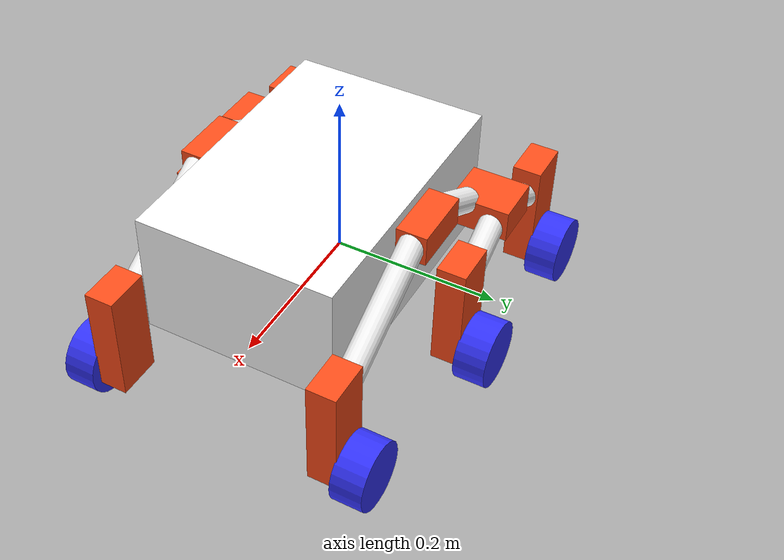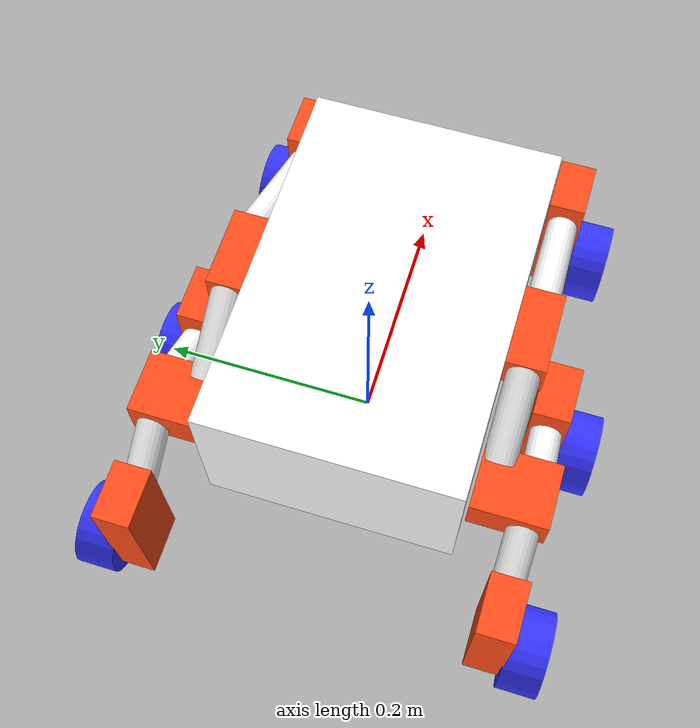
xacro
<?xml version="1.0"?>
<robot xmlns:xacro="http://www.ros.org/wiki/xacro" >

    <xacro:include filename="inertial_macros.xacro"/>

    <material name="white">
        <color rgba="1 1 1 1" />
    </material>

    <material name="orange">
        <color rgba="1 0.3 0.1 1"/>
    </material>

    <material name="blue">
        <color rgba="0.2 0.2 1 1"/>
    </material>

    <material name="black">
        <color rgba="0 0 0 1"/>
    </material>

    <!-- BASE LINK -->

    <link name="base_link">
    </link>

    <!-- BASE_FOOTPRINT LINK -->

    <joint name="base_footprint_joint" type="fixed">
        <parent link="base_link"/>
        <child link="base_footprint"/>
        <origin xyz="0 0 0" rpy="0 0 0"/>
    </joint>

    <link name="base_footprint">
    </link>

    <!-- CHASSIS LINK -->

    <joint name="chassis_joint" type="fixed">
        <parent link="base_link"/>
        <child link="chassis"/>
        <origin xyz="-0.1 0 0"/>
    </joint>

    <link name="chassis">
        <visual>
            <origin xyz="0.15 0 0.075"/>
            <geometry>
                <box size="0.345 0.234 0.15"/>
            </geometry>
            <material name="white"/>
        </visual>
        <collision>
            <origin xyz="0.15 0 0.075"/>
            <geometry>
                <box size="0.345 0.234 0.15"/>
            </geometry>
        </collision>
        <xacro:inertial_box mass="0.5" x="0.345" y="0.234" z="0.15">
            <origin xyz="0.15 0 0.075" rpy="0 0 0"/>
        </xacro:inertial_box>
    </link>

    <gazebo reference="chassis">
        <material>Gazebo/White</material>
    </gazebo>

    <!-- Left Mount Atas LINK -->

    <joint name="left_mount_atas_joint" type="fixed">
        <parent link="base_link"/>
        <child link="left_mount_atas"/>
        <origin xyz="0 0.175 0"/>
        <axis xyz="0 0 1"/>
    </joint>

    <link name="left_mount_atas">
        <visual>
            <origin xyz="0.05 -0.04 0.12"/>
            <geometry>
                <box size="0.077 0.036 0.036"/>
            </geometry>
            <material name="orange"/>
        </visual>
        <collision>
            <origin xyz="0.05 -0.04 0.12"/>
            <geometry>
                <box size="0.077 0.036 0.036"/>
            </geometry>
        </collision>
        <xacro:inertial_box mass="0.1" x="0.077" y="0.036" z="0.036">
            <origin xyz="0.05 -0.04 0.12" rpy="0 0 0"/>
        </xacro:inertial_box>
    </link>

    <gazebo reference="left_mount_atas">
        <material>Gazebo/Red</material>
    </gazebo>

    <!-- Right Mount Atas LINK -->

    <joint name="right_mount_atas_joint" type="fixed">
        <parent link="base_link"/>
        <child link="right_mount_atas"/>
        <origin xyz="0 -0.175 0"/>
        <axis xyz="0 0 -1"/>
    </joint>

    <link name="right_mount_atas">
        <visual>
            <origin xyz="0.05 0.04 0.12"/>
            <geometry>
                <box size="0.077 0.036 0.036"/>
            </geometry>
            <material name="orange"/>
        </visual>
        <collision>
            <origin xyz="0.05 0.04 0.12"/>
            <geometry>
                <box size="0.077 0.036 0.036"/>
            </geometry>
        </collision>
        <xacro:inertial_box mass="0.1" x="0.077" y="0.036" z="0.036">
            <origin xyz="0.05 0.04 0.12" rpy="0 0 0"/>
        </xacro:inertial_box>
    </link>

    <gazebo reference="right_mount_atas">
        <material>Gazebo/Red</material>
    </gazebo>

    <!-- Left Suspensi 1 LINK -->

    <joint name="left_suspensi_satu_joint" type="fixed">
        <parent link="base_link"/>
        <child link="left_suspensi_satu"/>
        <origin xyz="0 0.175 0"/>
        <axis xyz="0 0 1"/>
    </joint>

    <link name="left_suspensi_satu">
        <visual>
            <origin xyz="0.16 -0.04 0.078" rpy="0 2.0944 0"/>   <!-- x (menentukan kiri dan kanan) y(menentukan samping) z(menentukan ketinggian)-->
            <geometry>
                <cylinder radius="0.015" length="0.183"/>
            </geometry>
            <material name="white"/>
        </visual>
        <collision>
            <origin xyz="0.16 -0.04 0.078" rpy="0 2.0944 0"/>
            <geometry>
                <cylinder radius="0.015" length="0.183"/>
            </geometry>
        </collision>
        <xacro:inertial_cylinder mass="0.1" radius="0.015" length="0.183">
            <origin xyz="0.16 -0.04 0.078" rpy="0 2.0944 0"/>
        </xacro:inertial_cylinder>
    </link>

    <gazebo reference="left_suspensi_satu">
        <material>Gazebo/White</material>
    </gazebo>

    <!-- Right Suspensi 1 LINK -->

    <joint name="right_suspensi_satu_joint" type="fixed">
        <parent link="base_link"/>
        <child link="right_suspensi_satu"/>
        <origin xyz="0 -0.175 0"/>
        <axis xyz="0 0 -1"/>
    </joint>

    <link name="right_suspensi_satu">
        <visual>
            <origin xyz="0.16 0.04 0.077" rpy="0 2.0944 0"/>   <!-- x (menentukan kiri dan kanan) y(menentukan samping) z(menentukan ketinggian)-->
            <geometry>
                <cylinder radius="0.015" length="0.183"/>
            </geometry>
            <material name="white"/>
        </visual>
        <collision>
            <origin xyz="0.16 0.04 0.077" rpy="0 2.0944 0"/>
            <geometry>
                <cylinder radius="0.015" length="0.183"/>
            </geometry>
        </collision>
        <xacro:inertial_cylinder mass="0.1" radius="0.015" length="0.183">
            <origin xyz="0.16 0.04 0.077" rpy="0 2.0944 0"/>
        </xacro:inertial_cylinder>
    </link>

    <gazebo reference="right_suspensi_satu">
        <material>Gazebo/White</material>
    </gazebo>

    <!-- Left Suspensi 2 LINK -->

    <joint name="left_suspensi_dua_joint" type="fixed">
        <parent link="base_link"/>
        <child link="left_suspensi_dua"/>
        <origin xyz="0 0.175 0"/>
        <axis xyz="0 0 1"/>
    </joint>

    <link name="left_suspensi_dua">
        <visual>
            <origin xyz="-0.018 -0.04 0.1025" rpy="0 1.0472 0"/>   <!-- x (menentukan kiri dan kanan) y(menentukan samping) z(menentukan ketinggian)-->
            <geometry>
                <cylinder radius="0.015" length="0.085"/>
            </geometry>
            <material name="white"/>
        </visual>
        <collision>
            <origin xyz="-0.018 -0.04 0.1025" rpy="0 1.0472 0"/>
            <geometry>
                <cylinder radius="0.015" length="0.085"/>
            </geometry>
        </collision>
        <xacro:inertial_cylinder mass="0.1" radius="0.015" length="0.085">
            <origin xyz="-0.018 -0.04 0.1025" rpy="0 1.0472 0"/>
        </xacro:inertial_cylinder>
    </link>

    <gazebo reference="left_suspensi_dua">
        <material>Gazebo/White</material>
    </gazebo>

    <!-- Right Suspensi 2 LINK -->

    <joint name="right_suspensi_dua_joint" type="fixed">
        <parent link="base_link"/>
        <child link="right_suspensi_dua"/>
        <origin xyz="0 -0.175 0"/>
        <axis xyz="0 0 -1"/>
    </joint>

    <link name="right_suspensi_dua">
        <visual>
            <origin xyz="-0.018 0.04 0.1025" rpy="0 1.0472 0"/>   <!-- x (menentukan kiri dan kanan) y(menentukan samping) z(menentukan ketinggian)-->
            <geometry>
                <cylinder radius="0.015" length="0.085"/>
            </geometry>
            <material name="white"/>
        </visual>
        <collision>
            <origin xyz="-0.018 0.04 0.1025" rpy="0 1.0472 0"/>
            <geometry>
                <cylinder radius="0.015" length="0.085"/>
            </geometry>
        </collision>
        <xacro:inertial_cylinder mass="0.1" radius="0.015" length="0.085">
            <origin xyz="-0.018 0.04 0.1025" rpy="0 1.0472 0"/>
        </xacro:inertial_cylinder>
    </link>

    <gazebo reference="right_suspensi_dua">
        <material>Gazebo/White</material>
    </gazebo>

    <!-- Left Mount Bawah LINK -->

   <joint name="left_mount_bawah_joint" type="fixed">
        <parent link="base_link"/>
        <child link="left_mount_bawah"/>
        <origin xyz="0 0.175 0"/>
        <axis xyz="0 0 1"/>
    </joint>

    <link name="left_mount_bawah">
        <visual>
            <origin xyz="-0.075 -0.02 0.07" rpy="0 0 1.5708"/> <!-- x (menentukan kiri dan kanan) y(menentukan samping) z(menentukan ketinggian)-->
            <geometry>
                <box size="0.07 0.06 0.038"/>
            </geometry>
            <material name="orange"/>
        </visual>
        <collision>
            <origin xyz="-0.075 -0.02 0.07" rpy="0 0 1.5708"/>
            <geometry>
                <box size="0.07 0.06 0.038"/>
            </geometry>
        </collision>
        <xacro:inertial_box mass="0.1" x="0.07" y="0.06" z="0.038">
            <origin xyz="-0.075 -0.02 0.07" rpy="0 0 1.5708"/>
        </xacro:inertial_box>
    </link>

    <gazebo reference="left_mount_bawah">
        <material>Gazebo/Red</material>
    </gazebo>

    <!-- Right Mount Bawah LINK -->

    <joint name="right_mount_bawah_joint" type="fixed">
        <parent link="base_link"/>
        <child link="right_mount_bawah"/>
        <origin xyz="0 -0.175 0"/>
        <axis xyz="0 0 -1"/>
    </joint>

    <link name="right_mount_bawah">
        <visual>
            <origin xyz="-0.075 0.02 0.07" rpy="0 0 1.5708"/> <!-- x (menentukan kiri dan kanan) y(menentukan samping) z(menentukan ketinggian)-->
            <geometry>
                <box size="0.07 0.06 0.038"/>
            </geometry>
            <material name="orange"/>
        </visual>
        <collision>
            <origin xyz="-0.075 0.02 0.07" rpy="0 0 1.5708"/>
            <geometry>
                <box size="0.07 0.06 0.038"/>
            </geometry>
        </collision>
        <xacro:inertial_box mass="0.1" x="0.07" y="0.06" z="0.038">
            <origin xyz="-0.075 0.02 0.07" rpy="0 0 1.5708"/>
        </xacro:inertial_box>
    </link>

    <gazebo reference="right_mount_bawah">
        <material>Gazebo/Red</material>
    </gazebo>

    <!-- Left Suspensi 3 LINK -->

    <joint name="left_suspensi_tiga_joint" type="fixed">
        <parent link="base_link"/>
        <child link="left_suspensi_tiga"/>
        <origin xyz="0 0.175 0"/>
        <axis xyz="0 0 1"/>
    </joint>

    <link name="left_suspensi_tiga">
        <visual>
            <origin xyz="-0.0225 -0.005 0.05" rpy="0 2.0944 0"/>   <!-- x (menentukan kiri dan kanan) y(menentukan samping) z(menentukan ketinggian)-->
            <geometry>
                <cylinder radius="0.015" length="0.071"/>
            </geometry>
            <material name="white"/>
        </visual>
        <collision>
            <origin xyz="-0.0225 -0.005 0.05" rpy="0 2.0944 0"/>
            <geometry>
                <cylinder radius="0.015" length="0.071"/>
            </geometry>
        </collision>
        <xacro:inertial_cylinder mass="0.1" radius="0.015" length="0.071">
            <origin xyz="-0.0225 -0.005 0.05" rpy="0 2.0944 0"/>
        </xacro:inertial_cylinder>
    </link>

    <gazebo reference="left_suspensi_tiga">
        <material>Gazebo/White</material>
    </gazebo>

    <!-- Right Suspensi 3 LINK -->

    <joint name="right_suspensi_tiga_joint" type="fixed">
        <parent link="base_link"/>
        <child link="right_suspensi_tiga"/>
        <origin xyz="0 -0.175 0"/>
        <axis xyz="0 0 -1"/>
    </joint>

    <link name="right_suspensi_tiga">
        <visual>
            <origin xyz="-0.0225 0.005 0.05" rpy="0 2.0944 0"/>   <!-- x (menentukan kiri dan kanan) y(menentukan samping) z(menentukan ketinggian)-->
            <geometry>
                <cylinder radius="0.015" length="0.071"/>
            </geometry>
            <material name="white"/>
        </visual>
        <collision>
            <origin xyz="-0.0225 0.005 0.05" rpy="0 2.0944 0"/>
            <geometry>
                <cylinder radius="0.015" length="0.071"/>
            </geometry>
        </collision>
        <xacro:inertial_cylinder mass="0.1" radius="0.015" length="0.071">
            <origin xyz="-0.0225 0.005 0.05" rpy="0 2.0944 0"/>
        </xacro:inertial_cylinder>
    </link>

    <gazebo reference="right_suspensi_tiga">
        <material>Gazebo/White</material>
    </gazebo>

    <!-- Left Suspensi 4 LINK -->

    <joint name="left_suspensi_empat_joint" type="fixed">
        <parent link="base_link"/>
        <child link="left_suspensi_empat"/>
        <origin xyz="0 0.175 0"/>
        <axis xyz="0 0 1"/>
    </joint>

    <link name="left_suspensi_empat">
        <visual>
            <origin xyz="-0.125 -0.005 0.05" rpy="0 1.0472 0"/>   <!-- x (menentukan kiri dan kanan) y(menentukan samping) z(menentukan ketinggian)-->
            <geometry>
                <cylinder radius="0.015" length="0.071"/>
            </geometry>
            <material name="white"/>
        </visual>
        <collision>
            <origin xyz="-0.125 -0.005 0.05" rpy="0 1.0472 0"/>
            <geometry>
                <cylinder radius="0.015" length="0.071"/>
            </geometry>
        </collision>
        <xacro:inertial_cylinder mass="0.1" radius="0.015" length="0.071">
            <origin xyz="-0.125 -0.005 0.05" rpy="0 1.0472 0"/>
        </xacro:inertial_cylinder>
    </link>

    <gazebo reference="left_suspensi_empat">
        <material>Gazebo/White</material>
    </gazebo>

    <!-- Right Suspensi 4 LINK -->

    <joint name="right_suspensi_empat_joint" type="fixed">
        <parent link="base_link"/>
        <child link="right_suspensi_empat"/>
        <origin xyz="0 -0.175 0"/>
        <axis xyz="0 0 -1"/>
    </joint>

    <link name="right_suspensi_empat">
        <visual>
            <origin xyz="-0.125 0.005 0.05" rpy="0 1.0472 0"/>   <!-- x (menentukan kiri dan kanan) y(menentukan samping) z(menentukan ketinggian)-->
            <geometry>
                <cylinder radius="0.015" length="0.071"/>
            </geometry>
            <material name="white"/>
        </visual>
        <collision>
            <origin xyz="-0.125 0.005 0.05" rpy="0 1.0472 0"/>
            <geometry>
                <cylinder radius="0.015" length="0.071"/>
            </geometry>
        </collision>
        <xacro:inertial_cylinder mass="0.1" radius="0.015" length="0.071">
            <origin xyz="-0.125 0.005 0.05" rpy="0 1.0472 0"/>
        </xacro:inertial_cylinder>
    </link>

    <gazebo reference="right_suspensi_empat">
        <material>Gazebo/White</material>
    </gazebo>

    <!-- Left Mount motor Belakang LINK -->

    <joint name="left_mount_motor_belakang_joint" type="fixed">
        <parent link="base_link"/>
        <child link="left_mount_motor_belakang"/>
        <origin xyz="0 0.175 0"/>
        <axis xyz="0 0 1"/>
    </joint>

    <link name="left_mount_motor_belakang">
        <visual>
            <origin xyz="0.25 -0.04 0.005"/> <!-- x (menentukan kiri dan kanan) y(menentukan samping) z(menentukan ketinggian)-->
            <geometry>
                <box size="0.0545 0.0348 0.135211"/>
            </geometry>
            <material name="orange"/>
        </visual>
        <collision>
            <origin xyz="0.25 -0.04 0.005"/>
            <geometry>
                <box size="0.0545 0.0348 0.135211"/>
            </geometry>
        </collision>
        <xacro:inertial_box mass="0.1" x="0.0545" y="0.0348" z="0.0135211">
            <origin xyz="0.25 -0.04 0.005" rpy="0 0 0"/>
        </xacro:inertial_box>
    </link>

    <gazebo reference="left_mount_motor_belakang">
        <material>Gazebo/Red</material>
    </gazebo>

    <!-- Right Mount motor Belakang LINK -->

    <joint name="right_mount_motor_belakang_joint" type="fixed">
        <parent link="base_link"/>
        <child link="right_mount_motor_belakang"/>
        <origin xyz="0 -0.175 0"/>
        <axis xyz="0 0 -1"/>
    </joint>

    <link name="right_mount_motor_belakang">
        <visual>
            <origin xyz="0.25 0.04 0.005"/> <!-- x (menentukan kiri dan kanan) y(menentukan samping) z(menentukan ketinggian)-->
            <geometry>
                <box size="0.0545 0.0348 0.135211"/>
            </geometry>
            <material name="orange"/>
        </visual>
        <collision>
            <origin xyz="0.25 0.04 0.005"/>
            <geometry>
                <box size="0.0545 0.0348 0.135211"/>
            </geometry>
        </collision>
        <xacro:inertial_box mass="0.1" x="0.0545" y="0.0348" z="0.0135211">
            <origin xyz="0.25 0.04 0.005" rpy="0 0 0"/>
        </xacro:inertial_box>
    </link>

    <gazebo reference="right_mount_motor_belakang">
        <material>Gazebo/Red</material>
    </gazebo>

    <!-- Left Mount motor Tengah LINK -->

    <joint name="left_mount_motor_tengah_joint" type="fixed">
        <parent link="base_link"/>
        <child link="left_mount_motor_tengah"/>
        <origin xyz="0 0.175 0"/>
        <axis xyz="0 0 1"/>
    </joint>

    <link name="left_mount_motor_tengah">
        <visual>
            <origin xyz="0.03 -0.005 0.005"/> <!-- x (menentukan kiri dan kanan) y(menentukan samping) z(menentukan ketinggian)-->
            <geometry>
                <box size="0.0545 0.0348 0.135211"/>
            </geometry>
            <material name="orange"/>
        </visual>
        <collision>
            <origin xyz="0.03 -0.005 0.005"/>
            <geometry>
                <box size="0.0545 0.0348 0.135211"/>
            </geometry>
        </collision>
        <xacro:inertial_box mass="0.1" x="0.0545" y="0.0348" z="0.0135211">
            <origin xyz="0.03 -0.005 0.005" rpy="0 0 0"/>
        </xacro:inertial_box>
    </link>

    <gazebo reference="left_mount_motor_tengah">
        <material>Gazebo/Red</material>
    </gazebo>

    <!-- Right Mount motor Tengah LINK -->

    <joint name="right_mount_motor_tengah_joint" type="fixed">
        <parent link="base_link"/>
        <child link="right_mount_motor_tengah"/>
        <origin xyz="0 -0.175 0"/>
        <axis xyz="0 0 -1"/>
    </joint>

    <link name="right_mount_motor_tengah">
        <visual>
            <origin xyz="0.03 0.005 0.005"/> <!-- x (menentukan kiri dan kanan) y(menentukan samping) z(menentukan ketinggian)-->
            <geometry>
                <box size="0.0545 0.0348 0.135211"/>
            </geometry>
            <material name="orange"/>
        </visual>
        <collision>
            <origin xyz="0.03 0.005 0.005"/>
            <geometry>
                <box size="0.0545 0.0348 0.135211"/>
            </geometry>
        </collision>
        <xacro:inertial_box mass="0.1" x="0.0545" y="0.0348" z="0.0135211">
            <origin xyz="0.03 0.005 0.005" rpy="0 0 0"/>
        </xacro:inertial_box>
    </link>

    <gazebo reference="right_mount_motor_tengah">
        <material>Gazebo/Red</material>
    </gazebo>

    <!-- Left Mount motor Depan LINK -->

    <joint name="left_mount_motor_depan_joint" type="fixed">
        <parent link="base_link"/>
        <child link="left_mount_motor_depan"/>
        <origin xyz="0 0.175 0"/>
        <axis xyz="0 0 1"/>
    </joint>

    <link name="left_mount_motor_depan">
        <visual>
            <origin xyz="-0.175 -0.005 0.005"/> <!-- x (menentukan kiri dan kanan) y(menentukan samping) z(menentukan ketinggian)-->
            <geometry>
                <box size="0.0545 0.0348 0.135211"/>
            </geometry>
            <material name="orange"/>
        </visual>
        <collision>
            <origin xyz="-0.175 -0.005 0.005"/>
            <geometry>
                <box size="0.0545 0.0348 0.135211"/>
            </geometry>
        </collision>
        <xacro:inertial_box mass="0.1" x="0.0545" y="0.0348" z="0.0135211">
            <origin xyz="-0.175 -0.005 0.005" rpy="0 0 0"/>
        </xacro:inertial_box>
    </link>

    <gazebo reference="left_mount_motor_depan">
        <material>Gazebo/Red</material>
    </gazebo>

    <!-- Right Mount motor Depan LINK -->

    <joint name="right_mount_motor_depan_joint" type="fixed">
        <parent link="base_link"/>
        <child link="right_mount_motor_depan"/>
        <origin xyz="0 -0.175 0"/>
        <axis xyz="0 0 -1"/>
    </joint>

    <link name="right_mount_motor_depan">
        <visual>
            <origin xyz="-0.175 0.005 0.005"/> <!-- x (menentukan kiri dan kanan) y(menentukan samping) z(menentukan ketinggian)-->
            <geometry>
                <box size="0.0545 0.0348 0.135211"/>
            </geometry>
            <material name="orange"/>
        </visual>
        <collision>
            <origin xyz="-0.175 0.005 0.005"/>
            <geometry>
                <box size="0.0545 0.0348 0.135211"/>
            </geometry>
        </collision>
        <xacro:inertial_box mass="0.1" x="0.0545" y="0.0348" z="0.0135211">
            <origin xyz="-0.175 0.005 0.005" rpy="0 0 0"/>
        </xacro:inertial_box>
    </link>

    <gazebo reference="right_mount_motor_depan">
        <material>Gazebo/Red</material>
    </gazebo>

    <!-- LEFT WHEEL Depan LINK -->

    <joint name="left_wheel_Depan_joint" type="fixed">
        <parent link="base_link"/>
        <child link="left_wheel_depan"/>
        <origin xyz="0.25 0.17 -0.05" rpy="-${pi/2} 0 0"/>
        <axis xyz="0 0 1"/>
    </joint>

    <link name="left_wheel_depan">
        <visual>
            <geometry>
                <cylinder radius="0.0405" length="0.038"/>
            </geometry>
            <material name="blue"/>
        </visual>
        <collision>
            <geometry>
                <cylinder radius="0.0405" length="0.038"/>
            </geometry>
        </collision>
        <xacro:inertial_cylinder mass="0.1" length="0.038" radius="0.0405">
            <origin xyz="0 0 0" rpy="0 0 0"/>
        </xacro:inertial_cylinder>
    </link>

    <gazebo reference="left_wheel_depan">
        <material>Gazebo/Blue</material>
        <mu1 value="0.001"/>
        <mu2 value="0.001"/>
    </gazebo>

    <!-- Right WHEEL Depan LINK -->

    <joint name="right_wheel_Depan_joint" type="fixed">
        <parent link="base_link"/>
        <child link="right_wheel_depan"/>
        <origin xyz="0.25 -0.17 -0.05" rpy="-${pi/2} 0 0"/>
        <axis xyz="0 0 -1"/>
    </joint>

    <link name="right_wheel_depan">
        <visual>
            <geometry>
                <cylinder radius="0.0405" length="0.038"/>
            </geometry>
            <material name="blue"/>
        </visual>
        <collision>
            <geometry>
                <cylinder radius="0.0405" length="0.038"/>
            </geometry>
        </collision>
        <xacro:inertial_cylinder mass="0.1" length="0.038" radius="0.0405">
            <origin xyz="0 0 0" rpy="0 0 0"/>
        </xacro:inertial_cylinder>
    </link>

    <gazebo reference="right_wheel_depan">
        <material>Gazebo/Blue</material>
        <mu1 value="0.001"/>
        <mu2 value="0.001"/>
    </gazebo>

    <!-- LEFT WHEEL Tengah LINK -->

    <joint name="left_wheel_Tengah_joint" type="continuous">
        <parent link="base_link"/>
        <child link="left_wheel_tengah"/>
        <origin xyz="0.03 0.205 -0.05" rpy="-${pi/2} 0 0"/>
        <axis xyz="0 0 1"/>
    </joint>

    <link name="left_wheel_tengah">
        <visual>
            <geometry>
                <cylinder radius="0.0405" length="0.038"/>
            </geometry>
            <material name="blue"/>
        </visual>
        <collision>
            <geometry>
                <cylinder radius="0.0405" length="0.038"/>
            </geometry>
        </collision>
        <xacro:inertial_cylinder mass="0.1" length="0.038" radius="0.0405">
            <origin xyz="0 0 0" rpy="0 0 0"/>
        </xacro:inertial_cylinder>
    </link>

    <gazebo reference="left_wheel_tengah">
        <material>Gazebo/Blue</material>
    </gazebo>

    <!-- RIGHT WHEEL Tengah LINK -->

    <joint name="right_wheel_Tengah_joint" type="continuous">
        <parent link="base_link"/>
        <child link="right_wheel_tengah"/>
        <origin xyz="0.03 -0.205 -0.05" rpy="${pi/2} 0 0"/>
        <axis xyz="0 0 -1"/>
    </joint>

    <link name="right_wheel_tengah">
        <visual>
            <geometry>
                <cylinder radius="0.0405" length="0.038"/>
            </geometry>
            <material name="blue"/>
        </visual>
        <collision>
            <geometry>
                <cylinder radius="0.0405" length="0.038"/>
            </geometry>
        </collision>
        <xacro:inertial_cylinder mass="0.1" length="0.038" radius="0.0405">
            <origin xyz="0 0 0" rpy="0 0 0"/>
        </xacro:inertial_cylinder>
    </link>

    <gazebo reference="right_wheel_tengah">
        <material>Gazebo/Blue</material>
    </gazebo>

    <!-- LEFT WHEEL Belakang LINK -->

    <joint name="left_wheel_Belakang_joint" type="fixed">
        <parent link="base_link"/>
        <child link="left_wheel_belakang"/>
        <origin xyz="-0.175 0.205 -0.05" rpy="-${pi/2} 0 0"/>
        <axis xyz="0 0 1"/>
    </joint>

    <link name="left_wheel_belakang">
        <visual>
            <geometry>
                <cylinder radius="0.0405" length="0.038"/>
            </geometry>
            <material name="blue"/>
        </visual>
        <collision>
            <geometry>
                <cylinder radius="0.0405" length="0.038"/>
            </geometry>
        </collision>
        <xacro:inertial_cylinder mass="0.1" length="0.038" radius="0.0405">
            <origin xyz="0 0 0" rpy="0 0 0"/>
        </xacro:inertial_cylinder>
    </link>

    <gazebo reference="left_wheel_belakang">
        <material>Gazebo/Blue</material>
        <mu1 value="0.001"/>
        <mu2 value="0.001"/>
    </gazebo>

    <!-- Right WHEEL Belakang LINK -->

    <joint name="right_wheel_Belakang_joint" type="fixed">
        <parent link="base_link"/>
        <child link="right_wheel_belakang"/>
        <origin xyz="-0.175 -0.205 -0.05" rpy="-${pi/2} 0 0"/>
        <axis xyz="0 0 -1"/>
    </joint>

    <link name="right_wheel_belakang">
        <visual>
            <geometry>
                <cylinder radius="0.0405" length="0.038"/>
            </geometry>
            <material name="blue"/>
        </visual>
        <collision>
            <geometry>
                <cylinder radius="0.0405" length="0.038"/>
            </geometry>
        </collision>
        <xacro:inertial_cylinder mass="0.1" length="0.038" radius="0.0405">
            <origin xyz="0 0 0" rpy="0 0 0"/>
        </xacro:inertial_cylinder>
    </link>

    <gazebo reference="right_wheel_belakang">
        <material>Gazebo/Blue</material>
        <mu1 value="0.001"/>
        <mu2 value="0.001"/>
    </gazebo>

</robot>
